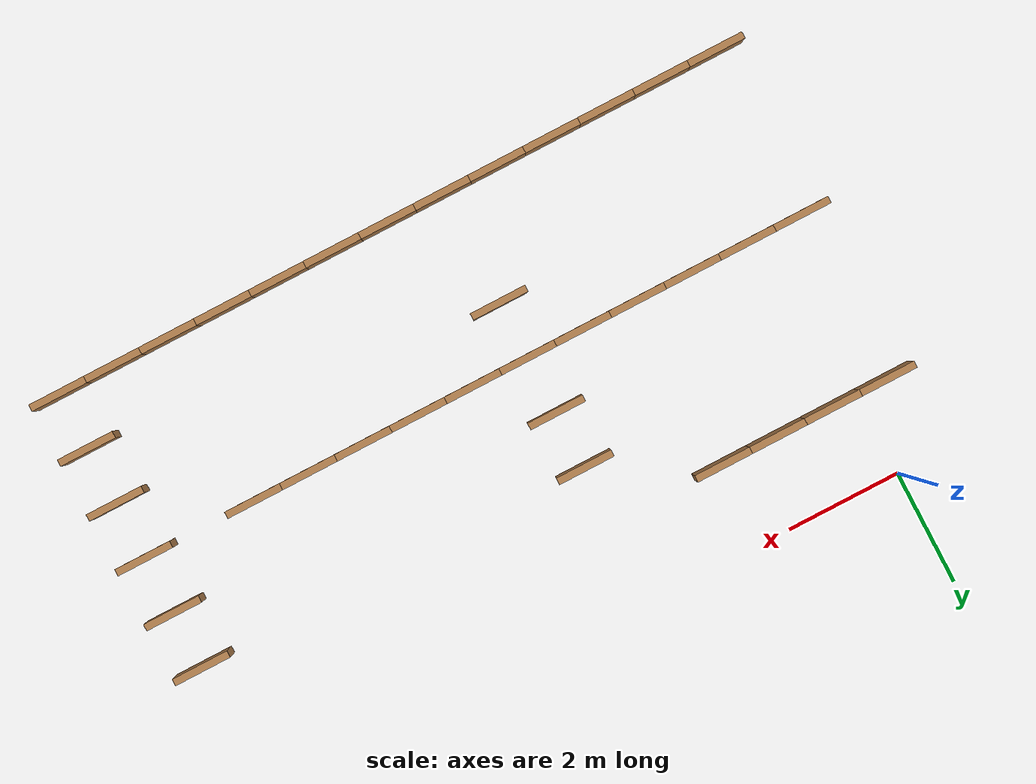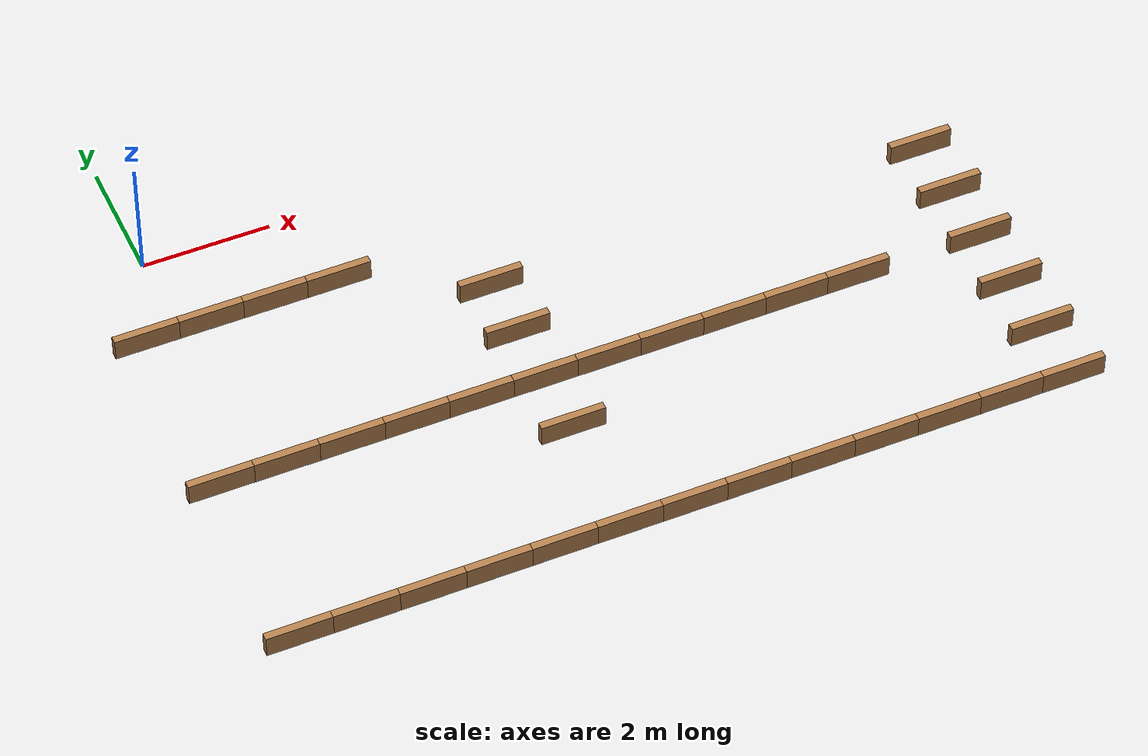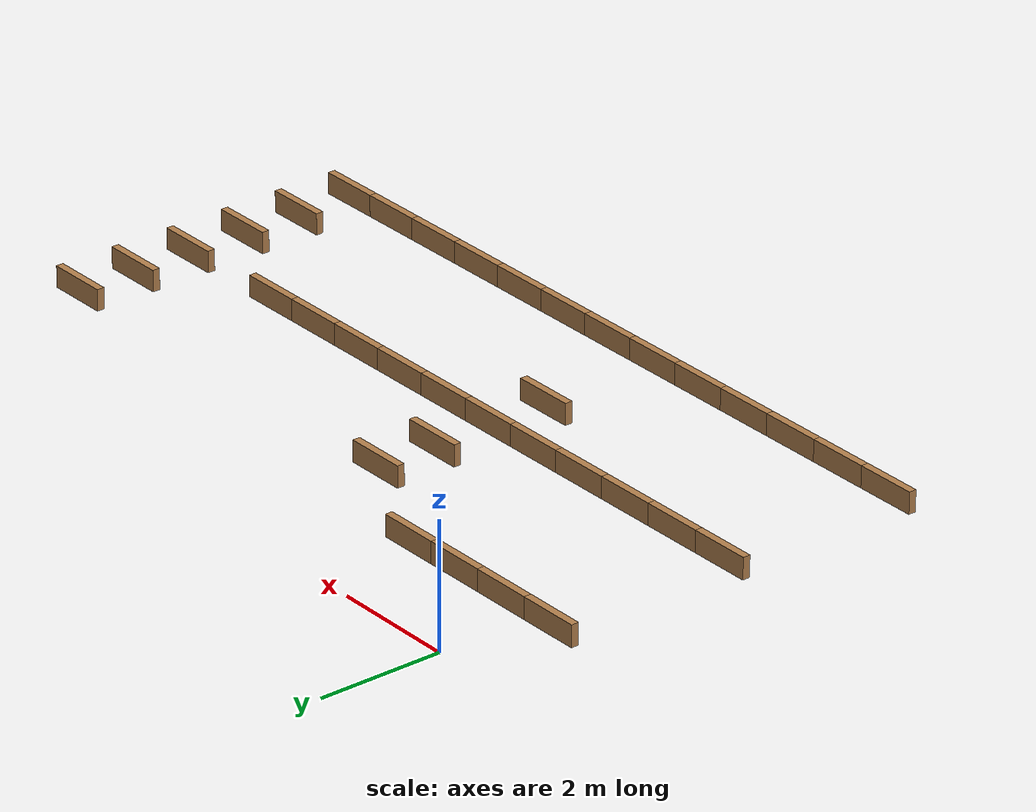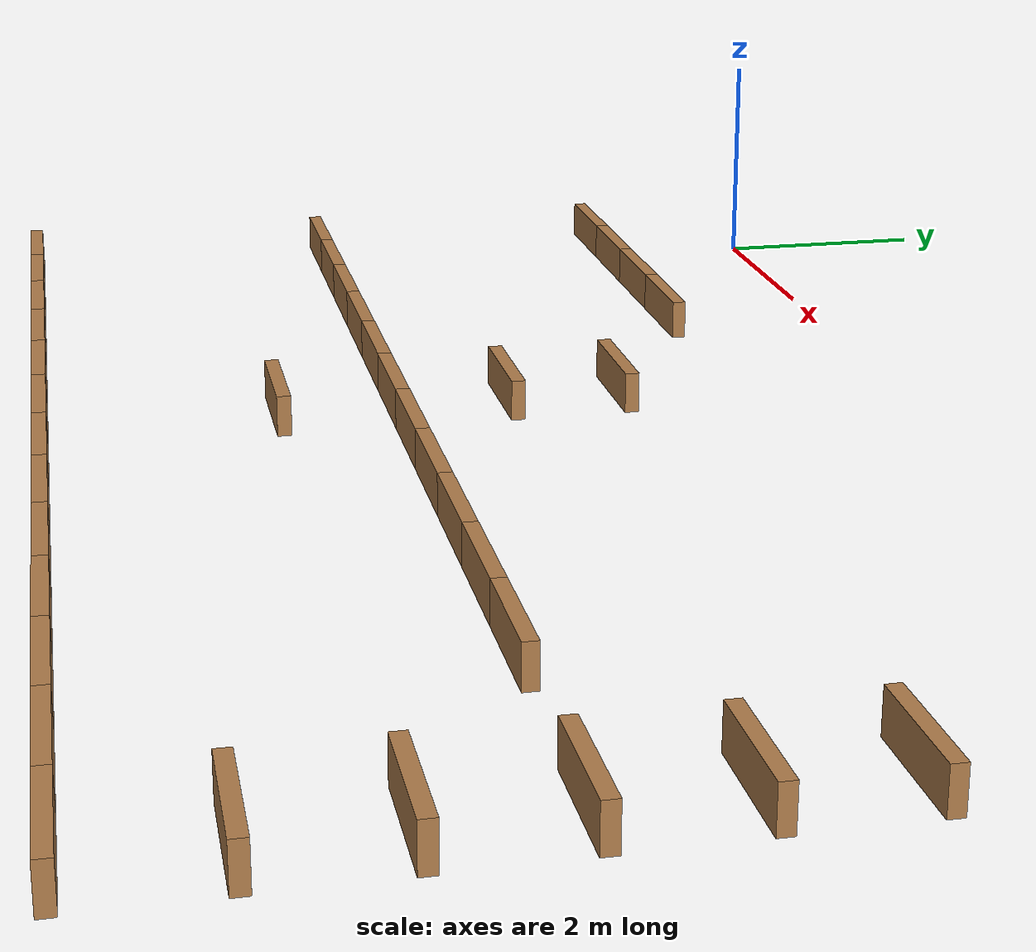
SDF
<sdf version="1.7">
 <world name="default">
  <include><uri>model://sun</uri></include>
  <model name="wall_r9_c11">
   <pose>-0.5 -1.5 0.175 0 0 0</pose>
   <static>true</static>
   <link name="link">
    <collision name="col"><geometry><box><size>1.0 0.12 0.35</size></box></geometry></collision>
    <visual name="vis">
     <geometry><box><size>1.0 0.12 0.35</size></box></geometry>
     <material>
      <ambient>0.3 0.2 0.1 1</ambient>
      <diffuse>0.7 0.5 0.3 1</diffuse>
      <specular>0.1 0.1 0.1 1</specular>
     </material>
    </visual>
   </link>
  </model>
  <model name="wall_r9_c12">
   <pose>0.5 -1.5 0.175 0 0 0</pose>
   <static>true</static>
   <link name="link">
    <collision name="col"><geometry><box><size>1.0 0.12 0.35</size></box></geometry></collision>
    <visual name="vis">
     <geometry><box><size>1.0 0.12 0.35</size></box></geometry>
     <material>
      <ambient>0.3 0.2 0.1 1</ambient>
      <diffuse>0.7 0.5 0.3 1</diffuse>
      <specular>0.1 0.1 0.1 1</specular>
     </material>
    </visual>
   </link>
  </model>
  <model name="wall_r9_c13">
   <pose>1.5 -1.5 0.175 0 0 0</pose>
   <static>true</static>
   <link name="link">
    <collision name="col"><geometry><box><size>1.0 0.12 0.35</size></box></geometry></collision>
    <visual name="vis">
     <geometry><box><size>1.0 0.12 0.35</size></box></geometry>
     <material>
      <ambient>0.3 0.2 0.1 1</ambient>
      <diffuse>0.7 0.5 0.3 1</diffuse>
      <specular>0.1 0.1 0.1 1</specular>
     </material>
    </visual>
   </link>
  </model>
  <model name="wall_r9_c14">
   <pose>2.5 -1.5 0.175 0 0 0</pose>
   <static>true</static>
   <link name="link">
    <collision name="col"><geometry><box><size>1.0 0.12 0.35</size></box></geometry></collision>
    <visual name="vis">
     <geometry><box><size>1.0 0.12 0.35</size></box></geometry>
     <material>
      <ambient>0.3 0.2 0.1 1</ambient>
      <diffuse>0.7 0.5 0.3 1</diffuse>
      <specular>0.1 0.1 0.1 1</specular>
     </material>
    </visual>
   </link>
  </model>
  <model name="wall_r10_c16">
   <pose>4.5 -2.5 0.175 0 0 0</pose>
   <static>true</static>
   <link name="link">
    <collision name="col"><geometry><box><size>1.0 0.12 0.35</size></box></geometry></collision>
    <visual name="vis">
     <geometry><box><size>1.0 0.12 0.35</size></box></geometry>
     <material>
      <ambient>0.3 0.2 0.1 1</ambient>
      <diffuse>0.7 0.5 0.3 1</diffuse>
      <specular>0.1 0.1 0.1 1</specular>
     </material>
    </visual>
   </link>
  </model>
  <model name="wall_r10_c23">
   <pose>11.5 -2.5 0.175 0 0 0</pose>
   <static>true</static>
   <link name="link">
    <collision name="col"><geometry><box><size>1.0 0.12 0.35</size></box></geometry></collision>
    <visual name="vis">
     <geometry><box><size>1.0 0.12 0.35</size></box></geometry>
     <material>
      <ambient>0.3 0.2 0.1 1</ambient>
      <diffuse>0.7 0.5 0.3 1</diffuse>
      <specular>0.1 0.1 0.1 1</specular>
     </material>
    </visual>
   </link>
  </model>
  <model name="wall_r11_c16">
   <pose>4.5 -3.5 0.175 0 0 0</pose>
   <static>true</static>
   <link name="link">
    <collision name="col"><geometry><box><size>1.0 0.12 0.35</size></box></geometry></collision>
    <visual name="vis">
     <geometry><box><size>1.0 0.12 0.35</size></box></geometry>
     <material>
      <ambient>0.3 0.2 0.1 1</ambient>
      <diffuse>0.7 0.5 0.3 1</diffuse>
      <specular>0.1 0.1 0.1 1</specular>
     </material>
    </visual>
   </link>
  </model>
  <model name="wall_r11_c23">
   <pose>11.5 -3.5 0.175 0 0 0</pose>
   <static>true</static>
   <link name="link">
    <collision name="col"><geometry><box><size>1.0 0.12 0.35</size></box></geometry></collision>
    <visual name="vis">
     <geometry><box><size>1.0 0.12 0.35</size></box></geometry>
     <material>
      <ambient>0.3 0.2 0.1 1</ambient>
      <diffuse>0.7 0.5 0.3 1</diffuse>
      <specular>0.1 0.1 0.1 1</specular>
     </material>
    </visual>
   </link>
  </model>
  <model name="wall_r12_c11">
   <pose>-0.5 -4.5 0.175 0 0 0</pose>
   <static>true</static>
   <link name="link">
    <collision name="col"><geometry><box><size>1.0 0.12 0.35</size></box></geometry></collision>
    <visual name="vis">
     <geometry><box><size>1.0 0.12 0.35</size></box></geometry>
     <material>
      <ambient>0.3 0.2 0.1 1</ambient>
      <diffuse>0.7 0.5 0.3 1</diffuse>
      <specular>0.1 0.1 0.1 1</specular>
     </material>
    </visual>
   </link>
  </model>
  <model name="wall_r12_c12">
   <pose>0.5 -4.5 0.175 0 0 0</pose>
   <static>true</static>
   <link name="link">
    <collision name="col"><geometry><box><size>1.0 0.12 0.35</size></box></geometry></collision>
    <visual name="vis">
     <geometry><box><size>1.0 0.12 0.35</size></box></geometry>
     <material>
      <ambient>0.3 0.2 0.1 1</ambient>
      <diffuse>0.7 0.5 0.3 1</diffuse>
      <specular>0.1 0.1 0.1 1</specular>
     </material>
    </visual>
   </link>
  </model>
  <model name="wall_r12_c13">
   <pose>1.5 -4.5 0.175 0 0 0</pose>
   <static>true</static>
   <link name="link">
    <collision name="col"><geometry><box><size>1.0 0.12 0.35</size></box></geometry></collision>
    <visual name="vis">
     <geometry><box><size>1.0 0.12 0.35</size></box></geometry>
     <material>
      <ambient>0.3 0.2 0.1 1</ambient>
      <diffuse>0.7 0.5 0.3 1</diffuse>
      <specular>0.1 0.1 0.1 1</specular>
     </material>
    </visual>
   </link>
  </model>
  <model name="wall_r12_c14">
   <pose>2.5 -4.5 0.175 0 0 0</pose>
   <static>true</static>
   <link name="link">
    <collision name="col"><geometry><box><size>1.0 0.12 0.35</size></box></geometry></collision>
    <visual name="vis">
     <geometry><box><size>1.0 0.12 0.35</size></box></geometry>
     <material>
      <ambient>0.3 0.2 0.1 1</ambient>
      <diffuse>0.7 0.5 0.3 1</diffuse>
      <specular>0.1 0.1 0.1 1</specular>
     </material>
    </visual>
   </link>
  </model>
  <model name="wall_r12_c15">
   <pose>3.5 -4.5 0.175 0 0 0</pose>
   <static>true</static>
   <link name="link">
    <collision name="col"><geometry><box><size>1.0 0.12 0.35</size></box></geometry></collision>
    <visual name="vis">
     <geometry><box><size>1.0 0.12 0.35</size></box></geometry>
     <material>
      <ambient>0.3 0.2 0.1 1</ambient>
      <diffuse>0.7 0.5 0.3 1</diffuse>
      <specular>0.1 0.1 0.1 1</specular>
     </material>
    </visual>
   </link>
  </model>
  <model name="wall_r12_c16">
   <pose>4.5 -4.5 0.175 0 0 0</pose>
   <static>true</static>
   <link name="link">
    <collision name="col"><geometry><box><size>1.0 0.12 0.35</size></box></geometry></collision>
    <visual name="vis">
     <geometry><box><size>1.0 0.12 0.35</size></box></geometry>
     <material>
      <ambient>0.3 0.2 0.1 1</ambient>
      <diffuse>0.7 0.5 0.3 1</diffuse>
      <specular>0.1 0.1 0.1 1</specular>
     </material>
    </visual>
   </link>
  </model>
  <model name="wall_r12_c17">
   <pose>5.5 -4.5 0.175 0 0 0</pose>
   <static>true</static>
   <link name="link">
    <collision name="col"><geometry><box><size>1.0 0.12 0.35</size></box></geometry></collision>
    <visual name="vis">
     <geometry><box><size>1.0 0.12 0.35</size></box></geometry>
     <material>
      <ambient>0.3 0.2 0.1 1</ambient>
      <diffuse>0.7 0.5 0.3 1</diffuse>
      <specular>0.1 0.1 0.1 1</specular>
     </material>
    </visual>
   </link>
  </model>
  <model name="wall_r12_c18">
   <pose>6.5 -4.5 0.175 0 0 0</pose>
   <static>true</static>
   <link name="link">
    <collision name="col"><geometry><box><size>1.0 0.12 0.35</size></box></geometry></collision>
    <visual name="vis">
     <geometry><box><size>1.0 0.12 0.35</size></box></geometry>
     <material>
      <ambient>0.3 0.2 0.1 1</ambient>
      <diffuse>0.7 0.5 0.3 1</diffuse>
      <specular>0.1 0.1 0.1 1</specular>
     </material>
    </visual>
   </link>
  </model>
  <model name="wall_r12_c19">
   <pose>7.5 -4.5 0.175 0 0 0</pose>
   <static>true</static>
   <link name="link">
    <collision name="col"><geometry><box><size>1.0 0.12 0.35</size></box></geometry></collision>
    <visual name="vis">
     <geometry><box><size>1.0 0.12 0.35</size></box></geometry>
     <material>
      <ambient>0.3 0.2 0.1 1</ambient>
      <diffuse>0.7 0.5 0.3 1</diffuse>
      <specular>0.1 0.1 0.1 1</specular>
     </material>
    </visual>
   </link>
  </model>
  <model name="wall_r12_c20">
   <pose>8.5 -4.5 0.175 0 0 0</pose>
   <static>true</static>
   <link name="link">
    <collision name="col"><geometry><box><size>1.0 0.12 0.35</size></box></geometry></collision>
    <visual name="vis">
     <geometry><box><size>1.0 0.12 0.35</size></box></geometry>
     <material>
      <ambient>0.3 0.2 0.1 1</ambient>
      <diffuse>0.7 0.5 0.3 1</diffuse>
      <specular>0.1 0.1 0.1 1</specular>
     </material>
    </visual>
   </link>
  </model>
  <model name="wall_r12_c21">
   <pose>9.5 -4.5 0.175 0 0 0</pose>
   <static>true</static>
   <link name="link">
    <collision name="col"><geometry><box><size>1.0 0.12 0.35</size></box></geometry></collision>
    <visual name="vis">
     <geometry><box><size>1.0 0.12 0.35</size></box></geometry>
     <material>
      <ambient>0.3 0.2 0.1 1</ambient>
      <diffuse>0.7 0.5 0.3 1</diffuse>
      <specular>0.1 0.1 0.1 1</specular>
     </material>
    </visual>
   </link>
  </model>
  <model name="wall_r12_c23">
   <pose>11.5 -4.5 0.175 0 0 0</pose>
   <static>true</static>
   <link name="link">
    <collision name="col"><geometry><box><size>1.0 0.12 0.35</size></box></geometry></collision>
    <visual name="vis">
     <geometry><box><size>1.0 0.12 0.35</size></box></geometry>
     <material>
      <ambient>0.3 0.2 0.1 1</ambient>
      <diffuse>0.7 0.5 0.3 1</diffuse>
      <specular>0.1 0.1 0.1 1</specular>
     </material>
    </visual>
   </link>
  </model>
  <model name="wall_r13_c16">
   <pose>4.5 -5.5 0.175 0 0 0</pose>
   <static>true</static>
   <link name="link">
    <collision name="col"><geometry><box><size>1.0 0.12 0.35</size></box></geometry></collision>
    <visual name="vis">
     <geometry><box><size>1.0 0.12 0.35</size></box></geometry>
     <material>
      <ambient>0.3 0.2 0.1 1</ambient>
      <diffuse>0.7 0.5 0.3 1</diffuse>
      <specular>0.1 0.1 0.1 1</specular>
     </material>
    </visual>
   </link>
  </model>
  <model name="wall_r13_c23">
   <pose>11.5 -5.5 0.175 0 0 0</pose>
   <static>true</static>
   <link name="link">
    <collision name="col"><geometry><box><size>1.0 0.12 0.35</size></box></geometry></collision>
    <visual name="vis">
     <geometry><box><size>1.0 0.12 0.35</size></box></geometry>
     <material>
      <ambient>0.3 0.2 0.1 1</ambient>
      <diffuse>0.7 0.5 0.3 1</diffuse>
      <specular>0.1 0.1 0.1 1</specular>
     </material>
    </visual>
   </link>
  </model>
  <model name="wall_r14_c23">
   <pose>11.5 -6.5 0.175 0 0 0</pose>
   <static>true</static>
   <link name="link">
    <collision name="col"><geometry><box><size>1.0 0.12 0.35</size></box></geometry></collision>
    <visual name="vis">
     <geometry><box><size>1.0 0.12 0.35</size></box></geometry>
     <material>
      <ambient>0.3 0.2 0.1 1</ambient>
      <diffuse>0.7 0.5 0.3 1</diffuse>
      <specular>0.1 0.1 0.1 1</specular>
     </material>
    </visual>
   </link>
  </model>
  <model name="wall_r15_c11">
   <pose>-0.5 -7.5 0.175 0 0 0</pose>
   <static>true</static>
   <link name="link">
    <collision name="col"><geometry><box><size>1.0 0.12 0.35</size></box></geometry></collision>
    <visual name="vis">
     <geometry><box><size>1.0 0.12 0.35</size></box></geometry>
     <material>
      <ambient>0.3 0.2 0.1 1</ambient>
      <diffuse>0.7 0.5 0.3 1</diffuse>
      <specular>0.1 0.1 0.1 1</specular>
     </material>
    </visual>
   </link>
  </model>
  <model name="wall_r15_c12">
   <pose>0.5 -7.5 0.175 0 0 0</pose>
   <static>true</static>
   <link name="link">
    <collision name="col"><geometry><box><size>1.0 0.12 0.35</size></box></geometry></collision>
    <visual name="vis">
     <geometry><box><size>1.0 0.12 0.35</size></box></geometry>
     <material>
      <ambient>0.3 0.2 0.1 1</ambient>
      <diffuse>0.7 0.5 0.3 1</diffuse>
      <specular>0.1 0.1 0.1 1</specular>
     </material>
    </visual>
   </link>
  </model>
  <model name="wall_r15_c13">
   <pose>1.5 -7.5 0.175 0 0 0</pose>
   <static>true</static>
   <link name="link">
    <collision name="col"><geometry><box><size>1.0 0.12 0.35</size></box></geometry></collision>
    <visual name="vis">
     <geometry><box><size>1.0 0.12 0.35</size></box></geometry>
     <material>
      <ambient>0.3 0.2 0.1 1</ambient>
      <diffuse>0.7 0.5 0.3 1</diffuse>
      <specular>0.1 0.1 0.1 1</specular>
     </material>
    </visual>
   </link>
  </model>
  <model name="wall_r15_c14">
   <pose>2.5 -7.5 0.175 0 0 0</pose>
   <static>true</static>
   <link name="link">
    <collision name="col"><geometry><box><size>1.0 0.12 0.35</size></box></geometry></collision>
    <visual name="vis">
     <geometry><box><size>1.0 0.12 0.35</size></box></geometry>
     <material>
      <ambient>0.3 0.2 0.1 1</ambient>
      <diffuse>0.7 0.5 0.3 1</diffuse>
      <specular>0.1 0.1 0.1 1</specular>
     </material>
    </visual>
   </link>
  </model>
  <model name="wall_r15_c15">
   <pose>3.5 -7.5 0.175 0 0 0</pose>
   <static>true</static>
   <link name="link">
    <collision name="col"><geometry><box><size>1.0 0.12 0.35</size></box></geometry></collision>
    <visual name="vis">
     <geometry><box><size>1.0 0.12 0.35</size></box></geometry>
     <material>
      <ambient>0.3 0.2 0.1 1</ambient>
      <diffuse>0.7 0.5 0.3 1</diffuse>
      <specular>0.1 0.1 0.1 1</specular>
     </material>
    </visual>
   </link>
  </model>
  <model name="wall_r15_c16">
   <pose>4.5 -7.5 0.175 0 0 0</pose>
   <static>true</static>
   <link name="link">
    <collision name="col"><geometry><box><size>1.0 0.12 0.35</size></box></geometry></collision>
    <visual name="vis">
     <geometry><box><size>1.0 0.12 0.35</size></box></geometry>
     <material>
      <ambient>0.3 0.2 0.1 1</ambient>
      <diffuse>0.7 0.5 0.3 1</diffuse>
      <specular>0.1 0.1 0.1 1</specular>
     </material>
    </visual>
   </link>
  </model>
  <model name="wall_r15_c17">
   <pose>5.5 -7.5 0.175 0 0 0</pose>
   <static>true</static>
   <link name="link">
    <collision name="col"><geometry><box><size>1.0 0.12 0.35</size></box></geometry></collision>
    <visual name="vis">
     <geometry><box><size>1.0 0.12 0.35</size></box></geometry>
     <material>
      <ambient>0.3 0.2 0.1 1</ambient>
      <diffuse>0.7 0.5 0.3 1</diffuse>
      <specular>0.1 0.1 0.1 1</specular>
     </material>
    </visual>
   </link>
  </model>
  <model name="wall_r15_c18">
   <pose>6.5 -7.5 0.175 0 0 0</pose>
   <static>true</static>
   <link name="link">
    <collision name="col"><geometry><box><size>1.0 0.12 0.35</size></box></geometry></collision>
    <visual name="vis">
     <geometry><box><size>1.0 0.12 0.35</size></box></geometry>
     <material>
      <ambient>0.3 0.2 0.1 1</ambient>
      <diffuse>0.7 0.5 0.3 1</diffuse>
      <specular>0.1 0.1 0.1 1</specular>
     </material>
    </visual>
   </link>
  </model>
  <model name="wall_r15_c19">
   <pose>7.5 -7.5 0.175 0 0 0</pose>
   <static>true</static>
   <link name="link">
    <collision name="col"><geometry><box><size>1.0 0.12 0.35</size></box></geometry></collision>
    <visual name="vis">
     <geometry><box><size>1.0 0.12 0.35</size></box></geometry>
     <material>
      <ambient>0.3 0.2 0.1 1</ambient>
      <diffuse>0.7 0.5 0.3 1</diffuse>
      <specular>0.1 0.1 0.1 1</specular>
     </material>
    </visual>
   </link>
  </model>
  <model name="wall_r15_c20">
   <pose>8.5 -7.5 0.175 0 0 0</pose>
   <static>true</static>
   <link name="link">
    <collision name="col"><geometry><box><size>1.0 0.12 0.35</size></box></geometry></collision>
    <visual name="vis">
     <geometry><box><size>1.0 0.12 0.35</size></box></geometry>
     <material>
      <ambient>0.3 0.2 0.1 1</ambient>
      <diffuse>0.7 0.5 0.3 1</diffuse>
      <specular>0.1 0.1 0.1 1</specular>
     </material>
    </visual>
   </link>
  </model>
  <model name="wall_r15_c21">
   <pose>9.5 -7.5 0.175 0 0 0</pose>
   <static>true</static>
   <link name="link">
    <collision name="col"><geometry><box><size>1.0 0.12 0.35</size></box></geometry></collision>
    <visual name="vis">
     <geometry><box><size>1.0 0.12 0.35</size></box></geometry>
     <material>
      <ambient>0.3 0.2 0.1 1</ambient>
      <diffuse>0.7 0.5 0.3 1</diffuse>
      <specular>0.1 0.1 0.1 1</specular>
     </material>
    </visual>
   </link>
  </model>
  <model name="wall_r15_c22">
   <pose>10.5 -7.5 0.175 0 0 0</pose>
   <static>true</static>
   <link name="link">
    <collision name="col"><geometry><box><size>1.0 0.12 0.35</size></box></geometry></collision>
    <visual name="vis">
     <geometry><box><size>1.0 0.12 0.35</size></box></geometry>
     <material>
      <ambient>0.3 0.2 0.1 1</ambient>
      <diffuse>0.7 0.5 0.3 1</diffuse>
      <specular>0.1 0.1 0.1 1</specular>
     </material>
    </visual>
   </link>
  </model>
  <model name="wall_r15_c23">
   <pose>11.5 -7.5 0.175 0 0 0</pose>
   <static>true</static>
   <link name="link">
    <collision name="col"><geometry><box><size>1.0 0.12 0.35</size></box></geometry></collision>
    <visual name="vis">
     <geometry><box><size>1.0 0.12 0.35</size></box></geometry>
     <material>
      <ambient>0.3 0.2 0.1 1</ambient>
      <diffuse>0.7 0.5 0.3 1</diffuse>
      <specular>0.1 0.1 0.1 1</specular>
     </material>
    </visual>
   </link>
  </model>
 </world>
</sdf>
